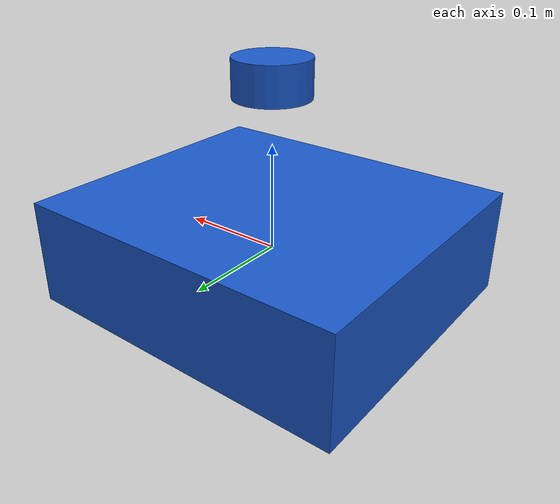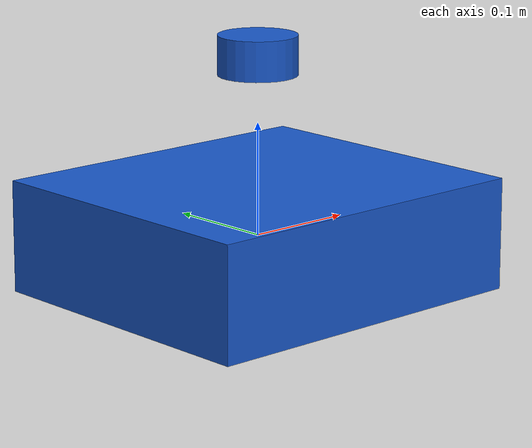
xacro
<?xml version="1.0"?>
<robot xmlns:xacro="http://www.ros.org/wiki/xacro" name="landerpi_sim">
  <material name="landerpi_blue">
    <color rgba="0.10 0.35 0.80 1.0"/>
  </material>

  <link name="base_link">
    <visual>
      <origin xyz="0 0 0" rpy="0 0 0"/>
      <geometry>
        <box size="0.32 0.28 0.10"/>
      </geometry>
      <material name="landerpi_blue"/>
    </visual>
  </link>

  <link name="laser_link">
    <visual>
      <geometry>
        <cylinder radius="0.035" length="0.035"/>
      </geometry>
      <material name="landerpi_blue"/>
    </visual>
  </link>

  <joint name="laser_joint" type="fixed">
    <parent link="base_link"/>
    <child link="laser_link"/>
    <origin xyz="0 0 0.16" rpy="0 0 0"/>
  </joint>
</robot>
